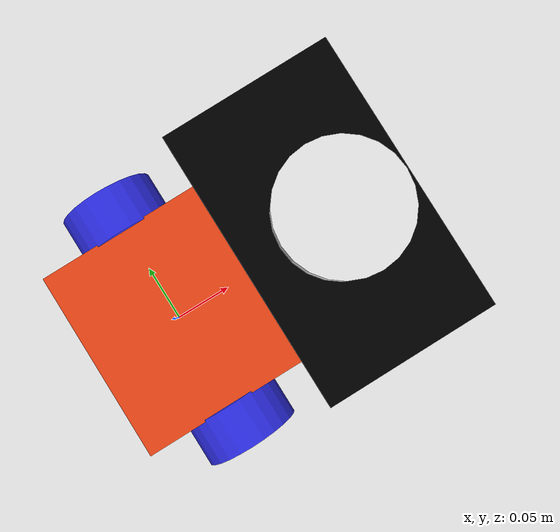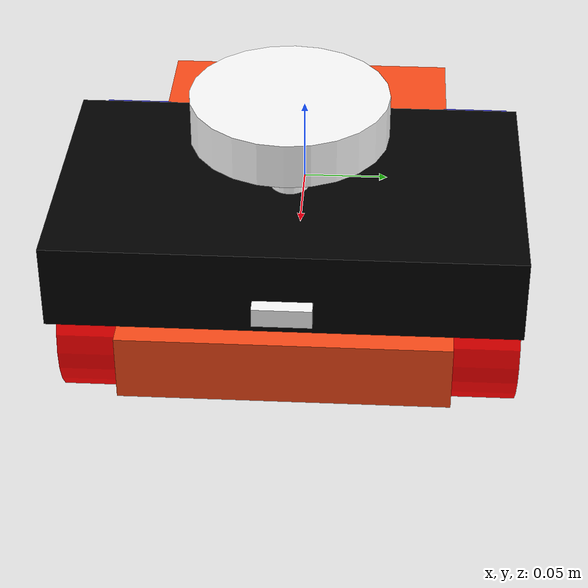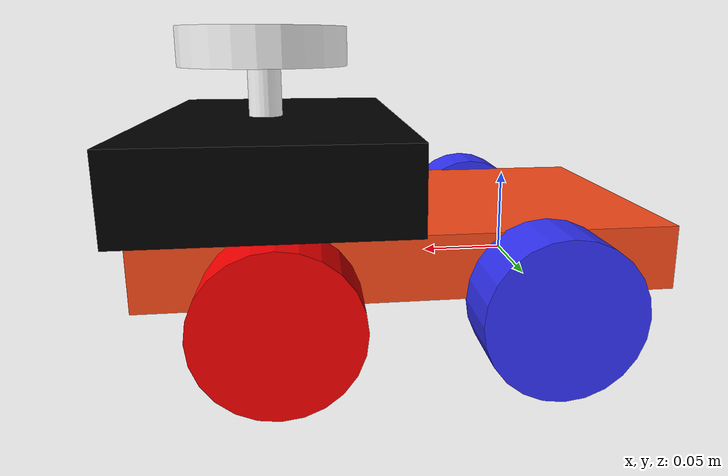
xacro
<?xml version="1.0"?>
<robot xmlns:xacro="http://www.ros.org/wiki/xacro"  name="knight">

    <xacro:arg name="use_ros2_control" default="true"/>
    <xacro:arg name="sim_mode" default="false"/>

    <xacro:include filename="urdf/simple.xacro" />

    <xacro:if value="$(arg use_ros2_control)">
        <xacro:include filename="ros2_control.xacro" />
    </xacro:if>
    <xacro:unless value="$(arg use_ros2_control)">
    </xacro:unless>
</robot>

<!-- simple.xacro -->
<robot xmlns:xacro="http://www.ros.org/wiki/xacro">

    <xacro:include filename="inertial_macros.xacro" />

    <xacro:property name="chassis_length" value="0.290" />
    <xacro:property name="chassis_width" value="0.170" />
    <xacro:property name="chassis_height" value="0.036" />

    <xacro:property name="head_length" value="${chassis_length/2}" />
    <xacro:property name="head_width" value="${chassis_width*1.4}" />
    <xacro:property name="head_height" value="0.0448" />

    <xacro:property name="chassis_mass" value="1.0" />

    <xacro:property name="wheel_radius" value="0.0425" />
    <xacro:property name="wheel_thickness" value="0.038" />
    <xacro:property name="wheel_mass" value="0.05" />

    <xacro:property name="front_wheel_offset_x" value="0.2148" />
    <xacro:property name="front_wheel_offset_y" value="${0.1024}" />
    <xacro:property name="front_wheel_offset_z" value="${wheel_radius}" />

    <xacro:property name="back_wheel_offset_x" value="0.0748" />
    <xacro:property name="back_wheel_offset_y" value="${front_wheel_offset_y}" />
    <xacro:property name="back_wheel_offset_z" value="${front_wheel_offset_z}" />

    <xacro:property name="lidar_height" value="0.023" />
    <xacro:property name="lidar_offset_x" value="0.224" />
    <xacro:property name="lidar_offset_z"
        value="${chassis_height + head_height + front_wheel_offset_z}" />

    <xacro:property name="imu_length" value="0.030" />
    <xacro:property name="imu_width" value="0.015" />
    <xacro:property name="imu_offset_x" value="${chassis_length}" />
    <xacro:property name="imu_offset_y" value="0.0" />
    <xacro:property name="imu_offset_z" value="${chassis_height + head_height + 0.02}" />

    <xacro:property name="mu1" value="0.25" />
    <xacro:property name="mu2" value="0.25" />
    <xacro:property name="sl1" value="10.0" />
    <xacro:property name="sl2" value="10.0" />

    <material name="white">
        <color rgba="1 1 1 1" />
    </material>

    <material name="orange">
        <color rgba="1 0.3 0.1 1" />
    </material>

    <material name="blue">
        <color rgba="0.2 0.2 1 1" />
    </material>

    <material name="black">
        <color rgba="0 0 0 1" />
    </material>

    <material name="red">
        <color rgba="1 0 0 1" />
    </material>

    <!-- BASE LINK -->

    <link name="base_link">

    </link>

    <!-- BASE_FOOTPRINT LINK -->

    <joint name="base_footprint_joint" type="fixed">
        <parent link="base_link" />
        <child link="base_footprint" />
        <origin xyz="0 0 0" rpy="0 0 0" />
    </joint>

    <link name="base_footprint">
    </link>

    <!-- CHASSIS LINK -->

    <joint name="chassis_joint" type="fixed">
        <parent link="base_link" />
        <child link="chassis" />
        <origin xyz="${-back_wheel_offset_x} 0 ${-front_wheel_offset_z}" />
    </joint>

    <link name="chassis">
        <visual>
            <origin xyz="${chassis_length/2} 0 ${chassis_height/2 + front_wheel_offset_z}" />
            <geometry>
                <box size="${chassis_length} ${chassis_width} ${chassis_height}" />
            </geometry>
            <material name="orange" />
        </visual>
        <collision>
            <origin xyz="${chassis_length/2} 0 ${chassis_height/2  + front_wheel_offset_z}" />
            <geometry>
                <box size="${chassis_length} ${chassis_width} ${chassis_height}" />
            </geometry>
        </collision>
        <xacro:inertial_box mass="0.5" x="${chassis_length}" y="${chassis_width}"
            z="${chassis_height}">
            <origin xyz="${chassis_length/2} 0 ${chassis_height/2  + front_wheel_offset_z}"
                rpy="0 0 0" />
        </xacro:inertial_box>
    </link>

    <gazebo reference="chassis">
        <material>Gazebo/Orange</material>
    </gazebo>

    <joint name="head_joint" type="fixed">
        <parent link="chassis" />
        <child link="head" />
        <origin xyz="${chassis_length - head_length/2} 0 ${head_height/2 + front_wheel_offset_z}" />
    </joint>

    <link name="head">
        <visual>
            <origin xyz="0 0 ${head_height}" />
            <geometry>
                <box size="${head_length} ${head_width} ${head_height}" />
            </geometry>
            <material name="black" />
        </visual>
        <collision>
            <origin xyz="0 0 ${head_height}" />
            <geometry>
                <box size="${head_length} ${head_width} ${head_height}" />
            </geometry>
        </collision>
        <xacro:inertial_box mass="0.5" x="${head_length}" y="${head_width}" z="${head_height}">
            <origin xyz="0 0 ${head_height}" rpy="0 0 0" />
        </xacro:inertial_box>
    </link>

    <gazebo reference="head">
        <material>Gazebo/Black</material>
    </gazebo>

    <joint name="front_left_joint" type="continuous">
        <parent link="base_link" />
        <child link="front_left" />
        <origin xyz="${front_wheel_offset_x - back_wheel_offset_x} ${front_wheel_offset_y} 0"
            rpy="-${pi/2} 0 0" />
        <axis xyz="0 0 1" />
    </joint>

    <link name="front_left">
        <visual>
            <geometry>
                <cylinder radius="${wheel_radius}" length="${wheel_thickness}" />
            </geometry>
            <material name="red" />
        </visual>
        <collision>
            <geometry>
                <sphere radius="${wheel_radius}" />
            </geometry>
        </collision>
        <xacro:inertial_cylinder mass="${wheel_mass}" length="${wheel_thickness}"
            radius="${wheel_radius}">
            <origin xyz="0 0 0" rpy="0 0 0" />
        </xacro:inertial_cylinder>
    </link>

    <gazebo reference="front_left">
        <material>Gazebo/Red</material>
        <mu1>${mu1}</mu1>        <!-- friction coefficient in one direction -->
        <mu2>${mu2}</mu2>        <!-- friction coefficient in the perpendicular direction -->
        <kp>1e5</kp>          <!-- contact stiffness -->
        <kd>1.0</kd>          <!-- contact damping -->
        <fdir1>1 0 0</fdir1>  <!-- primary friction direction -->
        <slip1>${sl1}</slip1>    <!-- slip in primary direction -->
        <slip2>${sl2}</slip2>    <!-- slip in perpendicular direction -->
    </gazebo>

    <joint name="front_right_joint" type="continuous">
        <parent link="base_link" />
        <child link="front_right" />
        <origin xyz="${front_wheel_offset_x - back_wheel_offset_x} ${-front_wheel_offset_y} 0"
            rpy="${pi/2} 0 0" />
        <axis xyz="0 0 -1" />
    </joint>

    <link name="front_right">
        <visual>
            <geometry>
                <cylinder radius="${wheel_radius}" length="${wheel_thickness}" />
            </geometry>
            <material name="red" />
        </visual>
        <collision>
            <geometry>
                <sphere radius="${wheel_radius}" />
            </geometry>
        </collision>
        <xacro:inertial_cylinder mass="${wheel_mass}" length="${wheel_thickness}"
            radius="${wheel_radius}">
            <origin xyz="0 0 0" rpy="0 0 0" />
        </xacro:inertial_cylinder>
    </link>

    <gazebo reference="front_right">
        <material>Gazebo/Red</material>
        <mu1>${mu1}</mu1>        <!-- friction coefficient in one direction -->
        <mu2>${mu2}</mu2>        <!-- friction coefficient in the perpendicular direction -->
        <kp>1e5</kp>          <!-- contact stiffness -->
        <kd>1.0</kd>          <!-- contact damping -->
        <fdir1>1 0 0</fdir1>  <!-- primary friction direction -->
        <slip1>${sl1}</slip1>    <!-- slip in primary direction -->
        <slip2>${sl2}</slip2>    <!-- slip in perpendicular direction -->
    </gazebo>

    <joint name="back_left_joint" type="continuous">
        <parent link="base_link" />
        <child link="back_left" />
        <origin xyz="0 ${back_wheel_offset_y} 0" rpy="-${pi/2} 0 0" />
        <axis xyz="0 0 1" />
    </joint>

    <link name="back_left">
        <visual>
            <geometry>
                <cylinder radius="${wheel_radius}" length="${wheel_thickness}" />
            </geometry>
            <material name="blue" />
        </visual>
        <collision>
            <geometry>
                <sphere radius="${wheel_radius}" />
            </geometry>
        </collision>
        <xacro:inertial_cylinder mass="${wheel_mass}" length="${wheel_thickness}"
            radius="${wheel_radius}">
            <origin xyz="0 0 0" rpy="0 0 0" />
        </xacro:inertial_cylinder>
    </link>

    <gazebo reference="back_left">
        <material>Gazebo/Blue</material>
        <mu1>${mu1}</mu1>        <!-- friction coefficient in one direction -->
        <mu2>${mu2}</mu2>        <!-- friction coefficient in the perpendicular direction -->
        <kp>1e5</kp>          <!-- contact stiffness -->
        <kd>1.0</kd>          <!-- contact damping -->
        <fdir1>1 0 0</fdir1>  <!-- primary friction direction -->
        <slip1>${sl1}</slip1>    <!-- slip in primary direction -->
        <slip2>${sl2}</slip2>    <!-- slip in perpendicular direction -->
    </gazebo>

    <joint name="back_right_joint" type="continuous">
        <parent link="base_link" />
        <child link="back_right" />
        <origin xyz="0 ${-back_wheel_offset_y} 0" rpy="${pi/2} 0 0" />
        <axis xyz="0 0 -1" />
    </joint>

    <link name="back_right">
        <visual>
            <geometry>
                <cylinder radius="${wheel_radius}" length="${wheel_thickness}" />
            </geometry>
            <material name="blue" />
        </visual>
        <collision>
            <geometry>
                <sphere radius="${wheel_radius}" />
            </geometry>
        </collision>
        <xacro:inertial_cylinder mass="${wheel_mass}" length="${wheel_thickness}"
            radius="${wheel_radius}">
            <origin xyz="0 0 0" rpy="0 0 0" />
        </xacro:inertial_cylinder>
    </link>

    <gazebo reference="back_right">
        <material>Gazebo/Blue</material>
        <mu1>${mu1}</mu1>        <!-- friction coefficient in one direction -->
        <mu2>${mu2}</mu2>        <!-- friction coefficient in the perpendicular direction -->
        <kp>1e5</kp>          <!-- contact stiffness -->
        <kd>1.0</kd>          <!-- contact damping -->
        <fdir1>1 0 0</fdir1>  <!-- primary friction direction -->
        <slip1>${sl1}</slip1>    <!-- slip in primary direction -->
        <slip2>${sl2}</slip2>    <!-- slip in perpendicular direction -->
    </gazebo>

    <joint name="lidar_joint" type="fixed">
        <parent link="chassis" />
        <child link="laser_frame" />
        <origin xyz="${lidar_offset_x} 0 ${lidar_offset_z + 0.05}" rpy="0 0 0" />
    </joint>

    <link name="laser_frame">
        <visual>
            <geometry>
                <cylinder radius="0.05" length="${lidar_height}" />
            </geometry>
            <material name="white" />
        </visual>
        <visual>
            <origin xyz="0 0 -0.05" />
            <geometry>
                <cylinder radius="0.01" length="0.1" />
            </geometry>
            <material name="white" />
        </visual>
        <collision>
            <geometry>
                <cylinder radius="0.05" length="${lidar_height}" />
            </geometry>
        </collision>
        <xacro:inertial_cylinder mass="0.1" length="0.04" radius="0.05">
            <origin xyz="0 0 0" rpy="0 0 0" />
        </xacro:inertial_cylinder>
    </link>

    <gazebo reference="laser_frame">
        <material>Gazebo/White</material>

        <sensor name="laser" type="ray">
            <pose> 0 0 0 0 0 0 </pose>
            <visualize>false</visualize>
            <update_rate>10</update_rate>
            <ray>
                <scan>
                    <horizontal>
                        <samples>360</samples>
                        <min_angle>-3.14</min_angle>
                        <max_angle>3.14</max_angle>
                    </horizontal>
                </scan>
                <range>
                    <min>0.3</min>
                    <max>12</max>
                </range>
            </ray>
            <plugin name="laser_controller" filename="libgazebo_ros_ray_sensor.so">
                <ros>
                    <argument>~/out:=scan</argument>
                </ros>
                <output_type>sensor_msgs/LaserScan</output_type>
                <frame_name>laser_frame</frame_name>
            </plugin>
        </sensor>
    </gazebo>

    <joint name="imu_joint" type="fixed">
        <parent link="chassis" />
        <child link="imu_link" />
        <origin xyz="${imu_offset_x} ${imu_offset_y} ${imu_offset_z}" rpy="0 0 ${-pi/2}" />
    </joint>

    <link name="imu_link">
        <visual>
            <geometry>
                <box size="${imu_length} ${imu_width} 0.01" />
            </geometry>
            <material name="white" />
        </visual>
        <visual>
            <geometry>
                <box size="${imu_length} ${imu_width} 0.01" />
            </geometry>
        </visual>
        <collision>
            <geometry>
                <box size="${imu_length} ${imu_width} 0.01" />
            </geometry>
        </collision>
        <xacro:inertial_box mass="0." x="${imu_length}" y="${imu_length}" z="0.01">
            <origin xyz="0 0 0" rpy="0 0 0" />
        </xacro:inertial_box>
    </link>

    <gazebo reference="imu_link">
        <material>Gazebo/White</material>
        <gravity>true</gravity>

        <sensor name="my_imu" type="imu">
            <!-- ensure the sensor is active (required) -->
            <always_on>true</always_on>
            <update_rate>30</update_rate>
            <visualize>true</visualize>
            <initialOrientationAsReference>true</initialOrientationAsReference>
            <plugin name="imu_controller" filename="libgazebo_ros_imu_sensor.so">
                <ros>
                    <namespace>/imu_broadcaster</namespace>
                    <remapping>~/out:=imu</remapping>
                </ros>
            </plugin>
        </sensor>

    </gazebo>

</robot>
